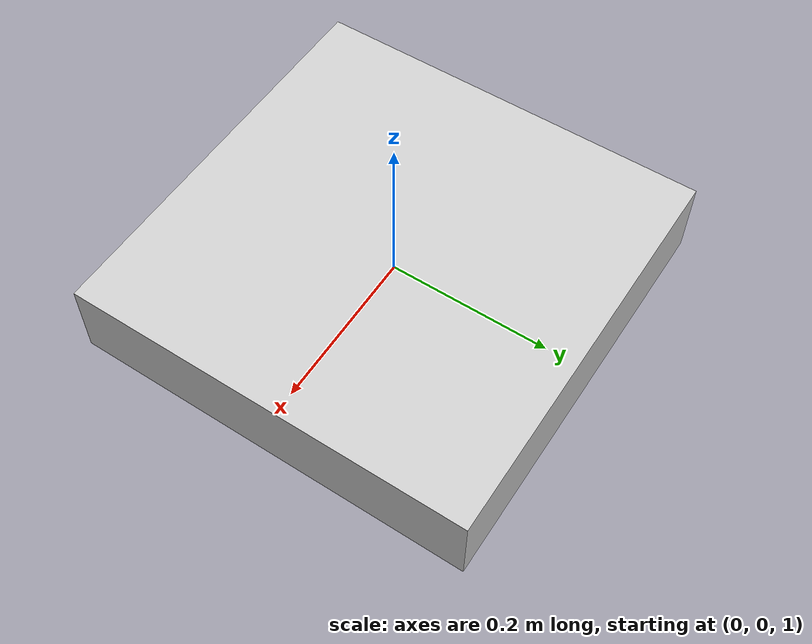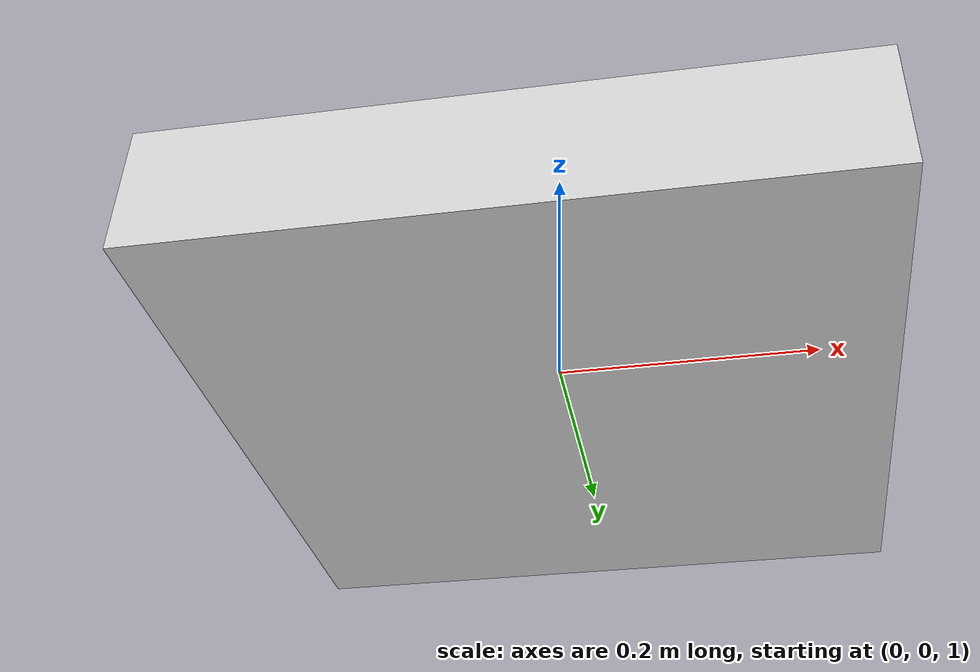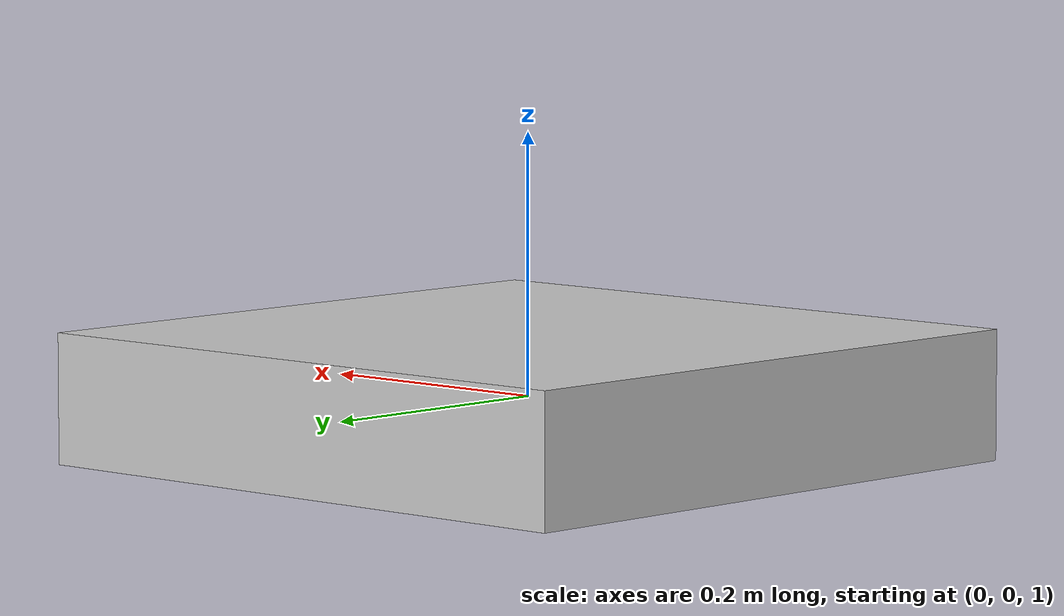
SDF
<?xml version='1.0'?>
<sdf version='1.8'>
  <model name='simple_drone'>
    <pose>0 0 1 0 0 0</pose>
    <static>false</static>
    <link name='base_link'>
      <inertial>
        <mass>1.0</mass>
        <inertia>
          <ixx>0.1</ixx>
          <iyy>0.1</iyy>
          <izz>0.1</izz>
        </inertia>
      </inertial>
      <collision name='collision'>
        <geometry>
          <box>
            <size>0.5 0.5 0.1</size>
          </box>
        </geometry>
      </collision>
      <visual name='visual'>
        <geometry>
          <box>
            <size>0.5 0.5 0.1</size>
          </box>
        </geometry>
        <material>
          <ambient>0.8 0.8 0.8 1</ambient>
          <diffuse>0.8 0.8 0.8 1</diffuse>
        </material>
      </visual>
      <sensor name='simple_imu' type='imu'>
        <always_on>1</always_on>
        <update_rate>100</update_rate>
        <topic>/sim/imu_raw</topic>
        <imu>
          <angular_velocity>
            <x>
              <noise type='gaussian'>
                <mean>0.0</mean>
                <stddev>2e-4</stddev>
                <bias_mean>0.0000075</bias_mean>
                <bias_stddev>0.0000008</bias_stddev>
              </noise>
            </x>
            <y>
              <noise type='gaussian'>
                <mean>0.0</mean>
                <stddev>2e-4</stddev>
                <bias_mean>0.0000075</bias_mean>
                <bias_stddev>0.0000008</bias_stddev>
              </noise>
            </y>
            <z>
              <noise type='gaussian'>
                <mean>0.0</mean>
                <stddev>2e-4</stddev>
                <bias_mean>0.0000075</bias_mean>
                <bias_stddev>0.0000008</bias_stddev>
              </noise>
            </z>
          </angular_velocity>
          <linear_acceleration>
            <x>
              <noise type='gaussian'>
                <mean>0.0</mean>
                <stddev>1.7e-2</stddev>
                <bias_mean>0.1</bias_mean>
                <bias_stddev>0.001</bias_stddev>
              </noise>
            </x>
            <y>
              <noise type='gaussian'>
                <mean>0.0</mean>
                <stddev>1.7e-2</stddev>
                <bias_mean>0.1</bias_mean>
                <bias_stddev>0.001</bias_stddev>
              </noise>
            </y>
            <z>
              <noise type='gaussian'>
                <mean>0.0</mean>
                <stddev>1.7e-2</stddev>
                <bias_mean>0.1</bias_mean>
                <bias_stddev>0.001</bias_stddev>
              </noise>
            </z>
          </linear_acceleration>
        </imu>
      </sensor>
    </link>
  </model>
</sdf>
